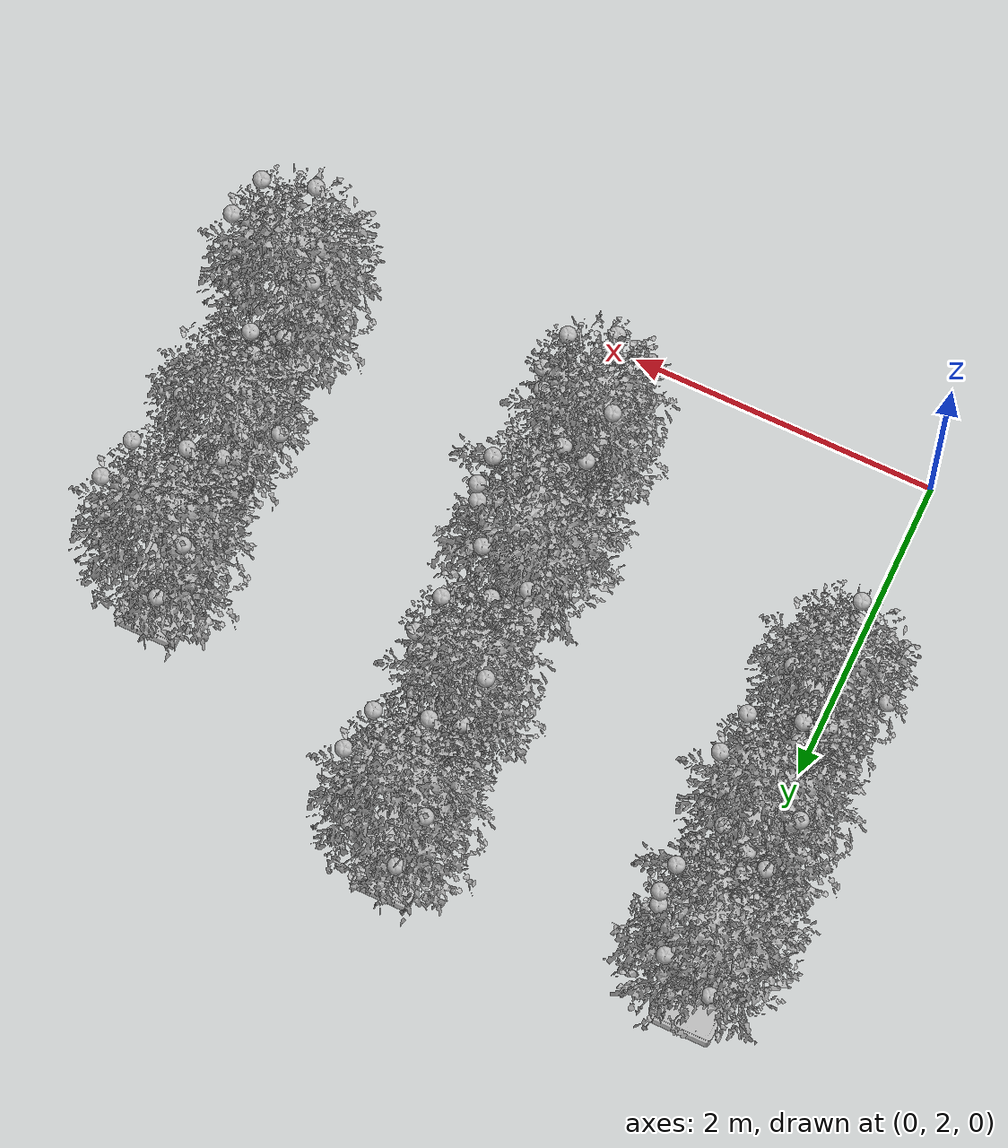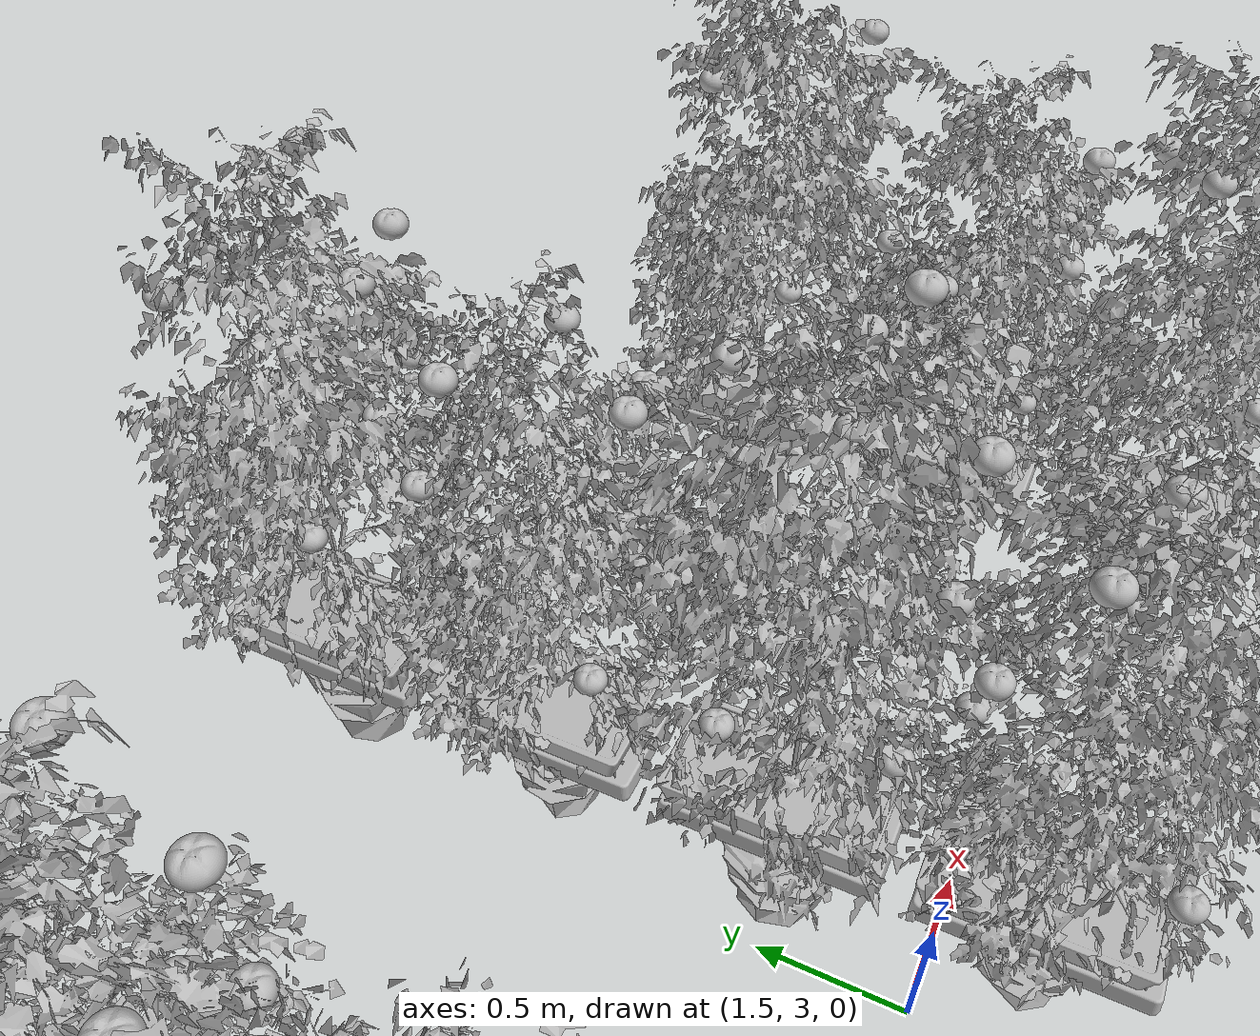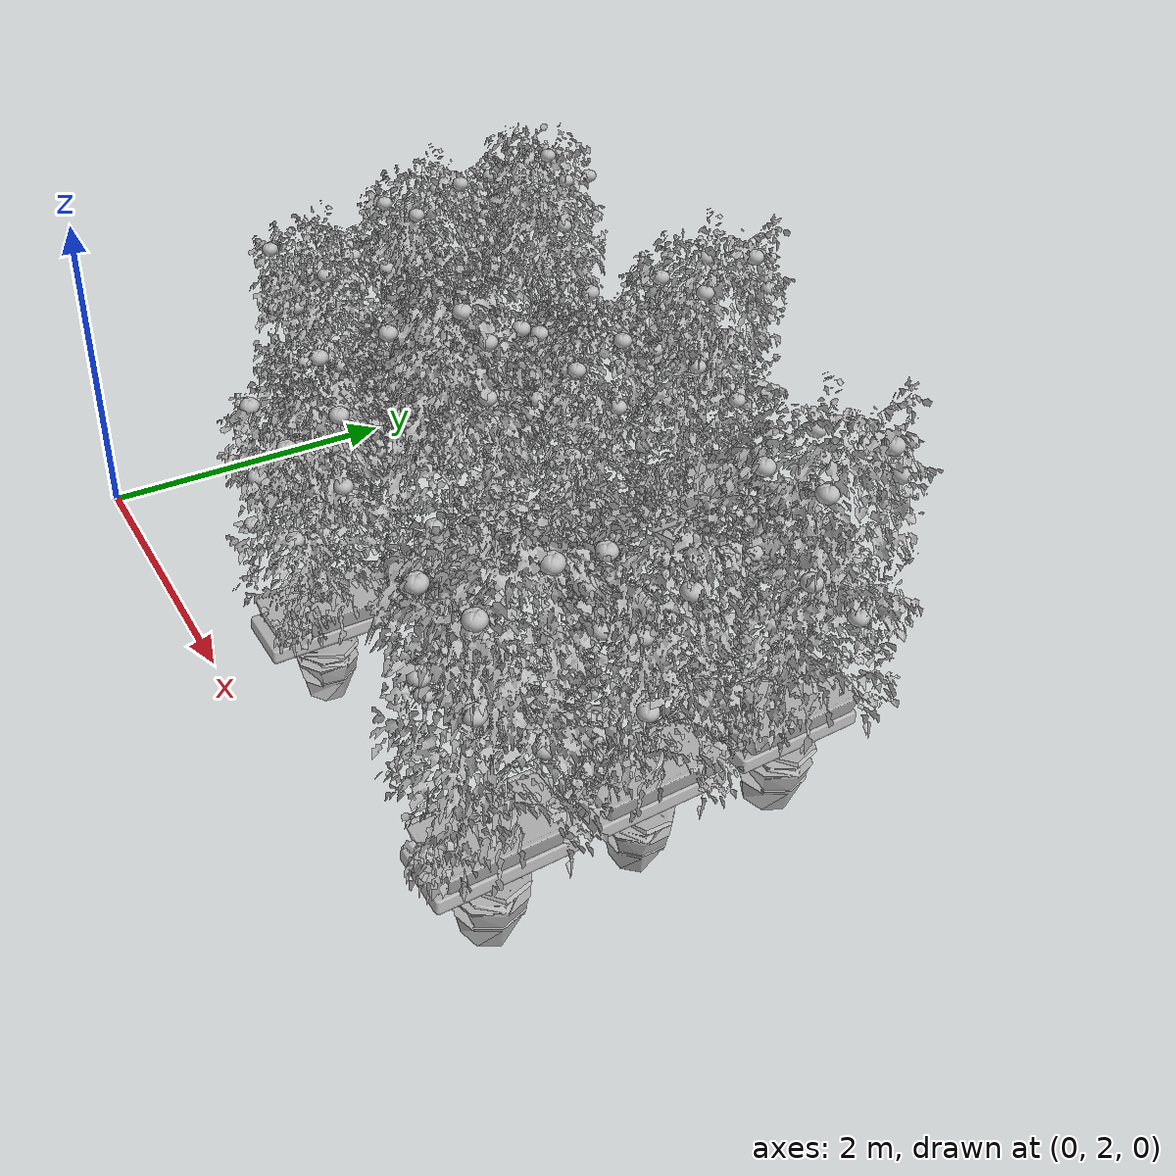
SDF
<sdf version="1.6">
 <world name="default">
  <model name="plant04">
   <static>1</static>
   <link name="plant_4::plant">
    <visual name="visual"><geometry><mesh><uri>model://plant/meshes/plant.obj</uri></mesh></geometry></visual>
    <collision name="collision"><geometry><box><size>0.1 0.1 0.1</size></box></geometry></collision>
    <pose>0 0 -0.45 0 0 -0.277507</pose>
   </link>
   <link name="trough::trough_link">
    <visual name="visual"><geometry><mesh><uri>model://trough/meshes/truf.obj</uri></mesh></geometry></visual>
    <collision name="collision">
     <geometry><mesh><uri>model://trough/meshes/truf.obj</uri></mesh></geometry>
    </collision>
    <pose>0 0 0 1.57 -0 0</pose>
   </link>
   <link name="tomato_40::tomato_link">
    <visual name="visual"><geometry><mesh><uri>model://tomato/meshes/tomato.obj</uri></mesh></geometry></visual>
    <collision name="collision">
     <geometry><mesh><uri>model://tomato/meshes/tomato.obj</uri></mesh></geometry>
    </collision>
    <pose>-0.297 0.244 0.669 0 -0 0</pose>
   </link>
   <link name="tomato_41::tomato_link">
    <visual name="visual"><geometry><mesh><uri>model://tomato/meshes/tomato.obj</uri></mesh></geometry></visual>
    <collision name="collision">
     <geometry><mesh><uri>model://tomato/meshes/tomato.obj</uri></mesh></geometry>
    </collision>
    <pose>0.073 0.375 1.175 0 -0 0</pose>
   </link>
   <link name="tomato_42::tomato_link">
    <visual name="visual"><geometry><mesh><uri>model://tomato/meshes/tomato.obj</uri></mesh></geometry></visual>
    <collision name="collision">
     <geometry><mesh><uri>model://tomato/meshes/tomato.obj</uri></mesh></geometry>
    </collision>
    <pose>0.196 -0.202 1.528 0 -0 0</pose>
   </link>
   <link name="tomato_43::tomato_link">
    <visual name="visual"><geometry><mesh><uri>model://tomato/meshes/tomato.obj</uri></mesh></geometry></visual>
    <collision name="collision">
     <geometry><mesh><uri>model://tomato/meshes/tomato.obj</uri></mesh></geometry>
    </collision>
    <pose>0.054 -0.237 0.732 0 -0 0</pose>
   </link>
   <link name="tomato_44::tomato_link">
    <visual name="visual"><geometry><mesh><uri>model://tomato/meshes/tomato.obj</uri></mesh></geometry></visual>
    <collision name="collision">
     <geometry><mesh><uri>model://tomato/meshes/tomato.obj</uri></mesh></geometry>
    </collision>
    <pose>-0.236 -0.275 0.851 0 -0 0</pose>
   </link>
   <link name="tomato_45::tomato_link">
    <visual name="visual"><geometry><mesh><uri>model://tomato/meshes/tomato.obj</uri></mesh></geometry></visual>
    <collision name="collision">
     <geometry><mesh><uri>model://tomato/meshes/tomato.obj</uri></mesh></geometry>
    </collision>
    <pose>-0.318 0.01 1.158 0 -0 0</pose>
   </link>
   <link name="tomato_46::tomato_link">
    <visual name="visual"><geometry><mesh><uri>model://tomato/meshes/tomato.obj</uri></mesh></geometry></visual>
    <collision name="collision">
     <geometry><mesh><uri>model://tomato/meshes/tomato.obj</uri></mesh></geometry>
    </collision>
    <pose>0.351 0.12 1.158 0 -0 0</pose>
   </link>
   <link name="tomato_47::tomato_link">
    <visual name="visual"><geometry><mesh><uri>model://tomato/meshes/tomato.obj</uri></mesh></geometry></visual>
    <collision name="collision">
     <geometry><mesh><uri>model://tomato/meshes/tomato.obj</uri></mesh></geometry>
    </collision>
    <pose>-0.039 -0.257 1.451 0 -0 0</pose>
   </link>
   <link name="tomato_48::tomato_link">
    <visual name="visual"><geometry><mesh><uri>model://tomato/meshes/tomato.obj</uri></mesh></geometry></visual>
    <collision name="collision">
     <geometry><mesh><uri>model://tomato/meshes/tomato.obj</uri></mesh></geometry>
    </collision>
    <pose>-0.236 -0.189 1.233 0 -0 0</pose>
   </link>
   <link name="tomato_49::tomato_link">
    <visual name="visual"><geometry><mesh><uri>model://tomato/meshes/tomato.obj</uri></mesh></geometry></visual>
    <collision name="collision">
     <geometry><mesh><uri>model://tomato/meshes/tomato.obj</uri></mesh></geometry>
    </collision>
    <pose>-0.318 0.01 1.599 0 -0 0</pose>
   </link>
   <pose>0 3.6 0 0 -0 1.57</pose>
  </model>
  <model name="plant05">
   <static>1</static>
   <link name="plant_1_link">
    <visual name="visual">
     <pose>0 0 -0.45 0 -0 0</pose>
     <geometry>
      <mesh><uri>model://plant/meshes/plant.obj</uri><scale>1.10961 1.10961 1.10961</scale></mesh>
     </geometry>
    </visual>
    <collision name="collision"><geometry><box><size>0.1 0.1 0.1</size></box></geometry></collision>
   </link>
   <link name="trough_1::trough_link">
    <visual name="visual"><geometry><mesh><uri>model://trough/meshes/truf.obj</uri></mesh></geometry></visual>
    <collision name="collision">
     <geometry><mesh><uri>model://trough/meshes/truf.obj</uri></mesh></geometry>
    </collision>
    <pose>0 0 0 1.57 -0 0</pose>
   </link>
   <link name="tomato_10::tomato_link">
    <visual name="visual"><geometry><mesh><uri>model://tomato/meshes/tomato.obj</uri></mesh></geometry></visual>
    <collision name="collision">
     <geometry><mesh><uri>model://tomato/meshes/tomato.obj</uri></mesh></geometry>
    </collision>
    <pose>-0.201 0.268 0.917 0 -0 0</pose>
   </link>
   <link name="tomato_11::tomato_link">
    <visual name="visual"><geometry><mesh><uri>model://tomato/meshes/tomato.obj</uri></mesh></geometry></visual>
    <collision name="collision">
     <geometry><mesh><uri>model://tomato/meshes/tomato.obj</uri></mesh></geometry>
    </collision>
    <pose>0.181 0.231 1.714 0 -0 0</pose>
   </link>
   <link name="tomato_12::tomato_link">
    <visual name="visual"><geometry><mesh><uri>model://tomato/meshes/tomato.obj</uri></mesh></geometry></visual>
    <collision name="collision">
     <geometry><mesh><uri>model://tomato/meshes/tomato.obj</uri></mesh></geometry>
    </collision>
    <pose>0.371 -0.171 1.608 0 -0 0</pose>
   </link>
   <link name="tomato_13::tomato_link">
    <visual name="visual"><geometry><mesh><uri>model://tomato/meshes/tomato.obj</uri></mesh></geometry></visual>
    <collision name="collision">
     <geometry><mesh><uri>model://tomato/meshes/tomato.obj</uri></mesh></geometry>
    </collision>
    <pose>0.059 -0.345 0.978 0 -0 0</pose>
   </link>
   <link name="tomato_14::tomato_link">
    <visual name="visual"><geometry><mesh><uri>model://tomato/meshes/tomato.obj</uri></mesh></geometry></visual>
    <collision name="collision">
     <geometry><mesh><uri>model://tomato/meshes/tomato.obj</uri></mesh></geometry>
    </collision>
    <pose>-0.263 -0.309 1.283 0 -0 0</pose>
   </link>
   <link name="tomato_15::tomato_link">
    <visual name="visual"><geometry><mesh><uri>model://tomato/meshes/tomato.obj</uri></mesh></geometry></visual>
    <collision name="collision">
     <geometry><mesh><uri>model://tomato/meshes/tomato.obj</uri></mesh></geometry>
    </collision>
    <pose>-0.354 0.008 1.283 0 -0 0</pose>
   </link>
   <link name="tomato_16::tomato_link">
    <visual name="visual"><geometry><mesh><uri>model://tomato/meshes/tomato.obj</uri></mesh></geometry></visual>
    <collision name="collision">
     <geometry><mesh><uri>model://tomato/meshes/tomato.obj</uri></mesh></geometry>
    </collision>
    <pose>0.389 0.13 1.096 0 -0 0</pose>
   </link>
   <link name="tomato_17::tomato_link">
    <visual name="visual"><geometry><mesh><uri>model://tomato/meshes/tomato.obj</uri></mesh></geometry></visual>
    <collision name="collision">
     <geometry><mesh><uri>model://tomato/meshes/tomato.obj</uri></mesh></geometry>
    </collision>
    <pose>0.059 -0.345 1.95 0 -0 0</pose>
   </link>
   <link name="tomato_18::tomato_link">
    <visual name="visual"><geometry><mesh><uri>model://tomato/meshes/tomato.obj</uri></mesh></geometry></visual>
    <collision name="collision">
     <geometry><mesh><uri>model://tomato/meshes/tomato.obj</uri></mesh></geometry>
    </collision>
    <pose>-0.263 -0.309 1.773 0 -0 0</pose>
   </link>
   <link name="tomato_19::tomato_link">
    <visual name="visual"><geometry><mesh><uri>model://tomato/meshes/tomato.obj</uri></mesh></geometry></visual>
    <collision name="collision">
     <geometry><mesh><uri>model://tomato/meshes/tomato.obj</uri></mesh></geometry>
    </collision>
    <pose>-0.354 0.008 1.773 0 -0 0</pose>
   </link>
   <pose>0 4.5 0 0 -0 1.57</pose>
  </model>
  <model name="plant06">
   <static>1</static>
   <link name="plant_3_link">
    <visual name="visual">
     <pose>0 0 -0.45 0 0 -1.57</pose>
     <geometry>
      <mesh><uri>model://plant/meshes/plant.obj</uri><scale>1.13768 1.13768 1.13768</scale></mesh>
     </geometry>
    </visual>
   </link>
   <link name="trough::trough_link">
    <visual name="visual"><geometry><mesh><uri>model://trough/meshes/truf.obj</uri></mesh></geometry></visual>
    <collision name="collision">
     <geometry><mesh><uri>model://trough/meshes/truf.obj</uri></mesh></geometry>
    </collision>
    <pose>0 0 0 1.57 -0 0</pose>
   </link>
   <link name="tomato_30::tomato_link">
    <visual name="visual"><geometry><mesh><uri>model://tomato/meshes/tomato.obj</uri></mesh></geometry></visual>
    <collision name="collision">
     <geometry><mesh><uri>model://tomato/meshes/tomato.obj</uri></mesh></geometry>
    </collision>
    <pose>-0.364 0.298 0.921 0 -0 0</pose>
   </link>
   <link name="tomato_31::tomato_link">
    <visual name="visual"><geometry><mesh><uri>model://tomato/meshes/tomato.obj</uri></mesh></geometry></visual>
    <collision name="collision">
     <geometry><mesh><uri>model://tomato/meshes/tomato.obj</uri></mesh></geometry>
    </collision>
    <pose>0.161 0.29 0.769 0 -0 0</pose>
   </link>
   <link name="tomato_32::tomato_link">
    <visual name="visual"><geometry><mesh><uri>model://tomato/meshes/tomato.obj</uri></mesh></geometry></visual>
    <collision name="collision">
     <geometry><mesh><uri>model://tomato/meshes/tomato.obj</uri></mesh></geometry>
    </collision>
    <pose>0.355 -0.152 1.751 0 -0 0</pose>
   </link>
   <link name="tomato_33::tomato_link">
    <visual name="visual"><geometry><mesh><uri>model://tomato/meshes/tomato.obj</uri></mesh></geometry></visual>
    <collision name="collision">
     <geometry><mesh><uri>model://tomato/meshes/tomato.obj</uri></mesh></geometry>
    </collision>
    <pose>0.036 -0.33 1.477 0 -0 0</pose>
   </link>
   <link name="tomato_34::tomato_link">
    <visual name="visual"><geometry><mesh><uri>model://tomato/meshes/tomato.obj</uri></mesh></geometry></visual>
    <collision name="collision">
     <geometry><mesh><uri>model://tomato/meshes/tomato.obj</uri></mesh></geometry>
    </collision>
    <pose>-0.294 -0.293 0.701 0 -0 0</pose>
   </link>
   <link name="tomato_35::tomato_link">
    <visual name="visual"><geometry><mesh><uri>model://tomato/meshes/tomato.obj</uri></mesh></geometry></visual>
    <collision name="collision">
     <geometry><mesh><uri>model://tomato/meshes/tomato.obj</uri></mesh></geometry>
    </collision>
    <pose>-0.388 0.032 1.317 0 -0 0</pose>
   </link>
   <link name="tomato_36::tomato_link">
    <visual name="visual"><geometry><mesh><uri>model://tomato/meshes/tomato.obj</uri></mesh></geometry></visual>
    <collision name="collision">
     <geometry><mesh><uri>model://tomato/meshes/tomato.obj</uri></mesh></geometry>
    </collision>
    <pose>0.374 0.157 1.317 0 -0 0</pose>
   </link>
   <link name="tomato_37::tomato_link">
    <visual name="visual"><geometry><mesh><uri>model://tomato/meshes/tomato.obj</uri></mesh></geometry></visual>
    <collision name="collision">
     <geometry><mesh><uri>model://tomato/meshes/tomato.obj</uri></mesh></geometry>
    </collision>
    <pose>0.036 -0.33 1.82 0 -0 0</pose>
   </link>
   <link name="tomato_38::tomato_link">
    <visual name="visual"><geometry><mesh><uri>model://tomato/meshes/tomato.obj</uri></mesh></geometry></visual>
    <collision name="collision">
     <geometry><mesh><uri>model://tomato/meshes/tomato.obj</uri></mesh></geometry>
    </collision>
    <pose>-0.102 -0.293 2.016 0 -0 0</pose>
   </link>
   <link name="tomato_39::tomato_link">
    <visual name="visual"><geometry><mesh><uri>model://tomato/meshes/tomato.obj</uri></mesh></geometry></visual>
    <collision name="collision">
     <geometry><mesh><uri>model://tomato/meshes/tomato.obj</uri></mesh></geometry>
    </collision>
    <pose>-0.388 0.032 1.82 0 -0 0</pose>
   </link>
   <pose>0 5.4 0 0 -0 1.57</pose>
  </model>
  <model name="plant13">
   <static>1</static>
   <link name="plant_2::plant">
    <visual name="visual"><geometry><mesh><uri>model://plant/meshes/plant.obj</uri></mesh></geometry></visual>
    <collision name="collision"><geometry><box><size>0.1 0.1 0.1</size></box></geometry></collision>
    <pose>0 0 -0.45 0 -0 0.338594</pose>
   </link>
   <link name="trough::trough_link">
    <visual name="visual"><geometry><mesh><uri>model://trough/meshes/truf.obj</uri></mesh></geometry></visual>
    <collision name="collision">
     <geometry><mesh><uri>model://trough/meshes/truf.obj</uri></mesh></geometry>
    </collision>
    <pose>0 0 0 1.57 -0 0</pose>
   </link>
   <link name="tomato_20::tomato_link">
    <visual name="visual"><geometry><mesh><uri>model://tomato/meshes/tomato.obj</uri></mesh></geometry></visual>
    <collision name="collision">
     <geometry><mesh><uri>model://tomato/meshes/tomato.obj</uri></mesh></geometry>
    </collision>
    <pose>-0.297 0.244 0.695 0 -0 0</pose>
   </link>
   <link name="tomato_21::tomato_link">
    <visual name="visual"><geometry><mesh><uri>model://tomato/meshes/tomato.obj</uri></mesh></geometry></visual>
    <collision name="collision">
     <geometry><mesh><uri>model://tomato/meshes/tomato.obj</uri></mesh></geometry>
    </collision>
    <pose>0.164 0.199 1.684 0 -0 0</pose>
   </link>
   <link name="tomato_22::tomato_link">
    <visual name="visual"><geometry><mesh><uri>model://tomato/meshes/tomato.obj</uri></mesh></geometry></visual>
    <collision name="collision">
     <geometry><mesh><uri>model://tomato/meshes/tomato.obj</uri></mesh></geometry>
    </collision>
    <pose>0.394 -0.151 0.705 0 -0 0</pose>
   </link>
   <link name="tomato_23::tomato_link">
    <visual name="visual"><geometry><mesh><uri>model://tomato/meshes/tomato.obj</uri></mesh></geometry></visual>
    <collision name="collision">
     <geometry><mesh><uri>model://tomato/meshes/tomato.obj</uri></mesh></geometry>
    </collision>
    <pose>0.054 -0.308 1.158 0 -0 0</pose>
   </link>
   <link name="tomato_24::tomato_link">
    <visual name="visual"><geometry><mesh><uri>model://tomato/meshes/tomato.obj</uri></mesh></geometry></visual>
    <collision name="collision">
     <geometry><mesh><uri>model://tomato/meshes/tomato.obj</uri></mesh></geometry>
    </collision>
    <pose>-0.236 -0.275 0.883 0 -0 0</pose>
   </link>
   <link name="tomato_25::tomato_link">
    <visual name="visual"><geometry><mesh><uri>model://tomato/meshes/tomato.obj</uri></mesh></geometry></visual>
    <collision name="collision">
     <geometry><mesh><uri>model://tomato/meshes/tomato.obj</uri></mesh></geometry>
    </collision>
    <pose>-0.318 0.01 1.158 0 -0 0</pose>
   </link>
   <link name="tomato_26::tomato_link">
    <visual name="visual"><geometry><mesh><uri>model://tomato/meshes/tomato.obj</uri></mesh></geometry></visual>
    <collision name="collision">
     <geometry><mesh><uri>model://tomato/meshes/tomato.obj</uri></mesh></geometry>
    </collision>
    <pose>0.351 0.12 1.158 0 -0 0</pose>
   </link>
   <link name="tomato_27::tomato_link">
    <visual name="visual"><geometry><mesh><uri>model://tomato/meshes/tomato.obj</uri></mesh></geometry></visual>
    <collision name="collision">
     <geometry><mesh><uri>model://tomato/meshes/tomato.obj</uri></mesh></geometry>
    </collision>
    <pose>0.054 -0.308 1.599 0 -0 0</pose>
   </link>
   <link name="tomato_28::tomato_link">
    <visual name="visual"><geometry><mesh><uri>model://tomato/meshes/tomato.obj</uri></mesh></geometry></visual>
    <collision name="collision">
     <geometry><mesh><uri>model://tomato/meshes/tomato.obj</uri></mesh></geometry>
    </collision>
    <pose>-0.236 -0.275 1.464 0 -0 0</pose>
   </link>
   <link name="tomato_29::tomato_link">
    <visual name="visual"><geometry><mesh><uri>model://tomato/meshes/tomato.obj</uri></mesh></geometry></visual>
    <collision name="collision">
     <geometry><mesh><uri>model://tomato/meshes/tomato.obj</uri></mesh></geometry>
    </collision>
    <pose>-0.318 0.01 1.599 0 -0 0</pose>
   </link>
   <pose>2 2.7 -0 0 -0 1.57</pose>
  </model>
  <model name="plant14">
   <static>1</static>
   <link name="plant_3_link">
    <visual name="visual">
     <pose>0 0 -0.45 0 0 -1.57</pose>
     <geometry>
      <mesh><uri>model://plant/meshes/plant.obj</uri><scale>1.13768 1.13768 1.13768</scale></mesh>
     </geometry>
    </visual>
   </link>
   <link name="trough::trough_link">
    <visual name="visual"><geometry><mesh><uri>model://trough/meshes/truf.obj</uri></mesh></geometry></visual>
    <collision name="collision">
     <geometry><mesh><uri>model://trough/meshes/truf.obj</uri></mesh></geometry>
    </collision>
    <pose>0 0 0 1.57 -0 0</pose>
   </link>
   <link name="tomato_30::tomato_link">
    <visual name="visual"><geometry><mesh><uri>model://tomato/meshes/tomato.obj</uri></mesh></geometry></visual>
    <collision name="collision">
     <geometry><mesh><uri>model://tomato/meshes/tomato.obj</uri></mesh></geometry>
    </collision>
    <pose>-0.364 0.298 0.921 0 -0 0</pose>
   </link>
   <link name="tomato_31::tomato_link">
    <visual name="visual"><geometry><mesh><uri>model://tomato/meshes/tomato.obj</uri></mesh></geometry></visual>
    <collision name="collision">
     <geometry><mesh><uri>model://tomato/meshes/tomato.obj</uri></mesh></geometry>
    </collision>
    <pose>0.161 0.29 0.769 0 -0 0</pose>
   </link>
   <link name="tomato_32::tomato_link">
    <visual name="visual"><geometry><mesh><uri>model://tomato/meshes/tomato.obj</uri></mesh></geometry></visual>
    <collision name="collision">
     <geometry><mesh><uri>model://tomato/meshes/tomato.obj</uri></mesh></geometry>
    </collision>
    <pose>0.355 -0.152 1.751 0 -0 0</pose>
   </link>
   <link name="tomato_33::tomato_link">
    <visual name="visual"><geometry><mesh><uri>model://tomato/meshes/tomato.obj</uri></mesh></geometry></visual>
    <collision name="collision">
     <geometry><mesh><uri>model://tomato/meshes/tomato.obj</uri></mesh></geometry>
    </collision>
    <pose>0.036 -0.33 1.477 0 -0 0</pose>
   </link>
   <link name="tomato_34::tomato_link">
    <visual name="visual"><geometry><mesh><uri>model://tomato/meshes/tomato.obj</uri></mesh></geometry></visual>
    <collision name="collision">
     <geometry><mesh><uri>model://tomato/meshes/tomato.obj</uri></mesh></geometry>
    </collision>
    <pose>-0.294 -0.293 0.701 0 -0 0</pose>
   </link>
   <link name="tomato_35::tomato_link">
    <visual name="visual"><geometry><mesh><uri>model://tomato/meshes/tomato.obj</uri></mesh></geometry></visual>
    <collision name="collision">
     <geometry><mesh><uri>model://tomato/meshes/tomato.obj</uri></mesh></geometry>
    </collision>
    <pose>-0.388 0.032 1.317 0 -0 0</pose>
   </link>
   <link name="tomato_36::tomato_link">
    <visual name="visual"><geometry><mesh><uri>model://tomato/meshes/tomato.obj</uri></mesh></geometry></visual>
    <collision name="collision">
     <geometry><mesh><uri>model://tomato/meshes/tomato.obj</uri></mesh></geometry>
    </collision>
    <pose>0.374 0.157 1.317 0 -0 0</pose>
   </link>
   <link name="tomato_37::tomato_link">
    <visual name="visual"><geometry><mesh><uri>model://tomato/meshes/tomato.obj</uri></mesh></geometry></visual>
    <collision name="collision">
     <geometry><mesh><uri>model://tomato/meshes/tomato.obj</uri></mesh></geometry>
    </collision>
    <pose>0.036 -0.33 1.82 0 -0 0</pose>
   </link>
   <link name="tomato_38::tomato_link">
    <visual name="visual"><geometry><mesh><uri>model://tomato/meshes/tomato.obj</uri></mesh></geometry></visual>
    <collision name="collision">
     <geometry><mesh><uri>model://tomato/meshes/tomato.obj</uri></mesh></geometry>
    </collision>
    <pose>-0.102 -0.293 2.016 0 -0 0</pose>
   </link>
   <link name="tomato_39::tomato_link">
    <visual name="visual"><geometry><mesh><uri>model://tomato/meshes/tomato.obj</uri></mesh></geometry></visual>
    <collision name="collision">
     <geometry><mesh><uri>model://tomato/meshes/tomato.obj</uri></mesh></geometry>
    </collision>
    <pose>-0.388 0.032 1.82 0 -0 0</pose>
   </link>
   <pose>2 3.6 0 0 -0 1.57</pose>
  </model>
  <model name="plant15">
   <static>1</static>
   <link name="plant_2::plant">
    <visual name="visual"><geometry><mesh><uri>model://plant/meshes/plant.obj</uri></mesh></geometry></visual>
    <collision name="collision"><geometry><box><size>0.1 0.1 0.1</size></box></geometry></collision>
    <pose>0 0 -0.45 0 -0 0.338594</pose>
   </link>
   <link name="trough::trough_link">
    <visual name="visual"><geometry><mesh><uri>model://trough/meshes/truf.obj</uri></mesh></geometry></visual>
    <collision name="collision">
     <geometry><mesh><uri>model://trough/meshes/truf.obj</uri></mesh></geometry>
    </collision>
    <pose>0 0 0 1.57 -0 0</pose>
   </link>
   <link name="tomato_20::tomato_link">
    <visual name="visual"><geometry><mesh><uri>model://tomato/meshes/tomato.obj</uri></mesh></geometry></visual>
    <collision name="collision">
     <geometry><mesh><uri>model://tomato/meshes/tomato.obj</uri></mesh></geometry>
    </collision>
    <pose>-0.297 0.244 0.695 0 -0 0</pose>
   </link>
   <link name="tomato_21::tomato_link">
    <visual name="visual"><geometry><mesh><uri>model://tomato/meshes/tomato.obj</uri></mesh></geometry></visual>
    <collision name="collision">
     <geometry><mesh><uri>model://tomato/meshes/tomato.obj</uri></mesh></geometry>
    </collision>
    <pose>0.164 0.199 1.684 0 -0 0</pose>
   </link>
   <link name="tomato_22::tomato_link">
    <visual name="visual"><geometry><mesh><uri>model://tomato/meshes/tomato.obj</uri></mesh></geometry></visual>
    <collision name="collision">
     <geometry><mesh><uri>model://tomato/meshes/tomato.obj</uri></mesh></geometry>
    </collision>
    <pose>0.394 -0.151 0.705 0 -0 0</pose>
   </link>
   <link name="tomato_23::tomato_link">
    <visual name="visual"><geometry><mesh><uri>model://tomato/meshes/tomato.obj</uri></mesh></geometry></visual>
    <collision name="collision">
     <geometry><mesh><uri>model://tomato/meshes/tomato.obj</uri></mesh></geometry>
    </collision>
    <pose>0.054 -0.308 1.158 0 -0 0</pose>
   </link>
   <link name="tomato_24::tomato_link">
    <visual name="visual"><geometry><mesh><uri>model://tomato/meshes/tomato.obj</uri></mesh></geometry></visual>
    <collision name="collision">
     <geometry><mesh><uri>model://tomato/meshes/tomato.obj</uri></mesh></geometry>
    </collision>
    <pose>-0.236 -0.275 0.883 0 -0 0</pose>
   </link>
   <link name="tomato_25::tomato_link">
    <visual name="visual"><geometry><mesh><uri>model://tomato/meshes/tomato.obj</uri></mesh></geometry></visual>
    <collision name="collision">
     <geometry><mesh><uri>model://tomato/meshes/tomato.obj</uri></mesh></geometry>
    </collision>
    <pose>-0.318 0.01 1.158 0 -0 0</pose>
   </link>
   <link name="tomato_26::tomato_link">
    <visual name="visual"><geometry><mesh><uri>model://tomato/meshes/tomato.obj</uri></mesh></geometry></visual>
    <collision name="collision">
     <geometry><mesh><uri>model://tomato/meshes/tomato.obj</uri></mesh></geometry>
    </collision>
    <pose>0.351 0.12 1.158 0 -0 0</pose>
   </link>
   <link name="tomato_27::tomato_link">
    <visual name="visual"><geometry><mesh><uri>model://tomato/meshes/tomato.obj</uri></mesh></geometry></visual>
    <collision name="collision">
     <geometry><mesh><uri>model://tomato/meshes/tomato.obj</uri></mesh></geometry>
    </collision>
    <pose>0.054 -0.308 1.599 0 -0 0</pose>
   </link>
   <link name="tomato_28::tomato_link">
    <visual name="visual"><geometry><mesh><uri>model://tomato/meshes/tomato.obj</uri></mesh></geometry></visual>
    <collision name="collision">
     <geometry><mesh><uri>model://tomato/meshes/tomato.obj</uri></mesh></geometry>
    </collision>
    <pose>-0.236 -0.275 1.464 0 -0 0</pose>
   </link>
   <link name="tomato_29::tomato_link">
    <visual name="visual"><geometry><mesh><uri>model://tomato/meshes/tomato.obj</uri></mesh></geometry></visual>
    <collision name="collision">
     <geometry><mesh><uri>model://tomato/meshes/tomato.obj</uri></mesh></geometry>
    </collision>
    <pose>-0.318 0.01 1.599 0 -0 0</pose>
   </link>
   <pose>2 4.5 -0 0 -0 1.57</pose>
  </model>
  <model name="plant16">
   <static>1</static>
   <link name="plant_1_link">
    <visual name="visual">
     <pose>0 0 -0.45 0 -0 0</pose>
     <geometry>
      <mesh><uri>model://plant/meshes/plant.obj</uri><scale>1.10961 1.10961 1.10961</scale></mesh>
     </geometry>
    </visual>
    <collision name="collision"><geometry><box><size>0.1 0.1 0.1</size></box></geometry></collision>
   </link>
   <link name="trough_1::trough_link">
    <visual name="visual"><geometry><mesh><uri>model://trough/meshes/truf.obj</uri></mesh></geometry></visual>
    <collision name="collision">
     <geometry><mesh><uri>model://trough/meshes/truf.obj</uri></mesh></geometry>
    </collision>
    <pose>0 0 0 1.57 -0 0</pose>
   </link>
   <link name="tomato_10::tomato_link">
    <visual name="visual"><geometry><mesh><uri>model://tomato/meshes/tomato.obj</uri></mesh></geometry></visual>
    <collision name="collision">
     <geometry><mesh><uri>model://tomato/meshes/tomato.obj</uri></mesh></geometry>
    </collision>
    <pose>-0.201 0.268 0.917 0 -0 0</pose>
   </link>
   <link name="tomato_11::tomato_link">
    <visual name="visual"><geometry><mesh><uri>model://tomato/meshes/tomato.obj</uri></mesh></geometry></visual>
    <collision name="collision">
     <geometry><mesh><uri>model://tomato/meshes/tomato.obj</uri></mesh></geometry>
    </collision>
    <pose>0.181 0.231 1.714 0 -0 0</pose>
   </link>
   <link name="tomato_12::tomato_link">
    <visual name="visual"><geometry><mesh><uri>model://tomato/meshes/tomato.obj</uri></mesh></geometry></visual>
    <collision name="collision">
     <geometry><mesh><uri>model://tomato/meshes/tomato.obj</uri></mesh></geometry>
    </collision>
    <pose>0.371 -0.171 1.608 0 -0 0</pose>
   </link>
   <link name="tomato_13::tomato_link">
    <visual name="visual"><geometry><mesh><uri>model://tomato/meshes/tomato.obj</uri></mesh></geometry></visual>
    <collision name="collision">
     <geometry><mesh><uri>model://tomato/meshes/tomato.obj</uri></mesh></geometry>
    </collision>
    <pose>0.059 -0.345 0.978 0 -0 0</pose>
   </link>
   <link name="tomato_14::tomato_link">
    <visual name="visual"><geometry><mesh><uri>model://tomato/meshes/tomato.obj</uri></mesh></geometry></visual>
    <collision name="collision">
     <geometry><mesh><uri>model://tomato/meshes/tomato.obj</uri></mesh></geometry>
    </collision>
    <pose>-0.263 -0.309 1.283 0 -0 0</pose>
   </link>
   <link name="tomato_15::tomato_link">
    <visual name="visual"><geometry><mesh><uri>model://tomato/meshes/tomato.obj</uri></mesh></geometry></visual>
    <collision name="collision">
     <geometry><mesh><uri>model://tomato/meshes/tomato.obj</uri></mesh></geometry>
    </collision>
    <pose>-0.354 0.008 1.283 0 -0 0</pose>
   </link>
   <link name="tomato_16::tomato_link">
    <visual name="visual"><geometry><mesh><uri>model://tomato/meshes/tomato.obj</uri></mesh></geometry></visual>
    <collision name="collision">
     <geometry><mesh><uri>model://tomato/meshes/tomato.obj</uri></mesh></geometry>
    </collision>
    <pose>0.389 0.13 1.096 0 -0 0</pose>
   </link>
   <link name="tomato_17::tomato_link">
    <visual name="visual"><geometry><mesh><uri>model://tomato/meshes/tomato.obj</uri></mesh></geometry></visual>
    <collision name="collision">
     <geometry><mesh><uri>model://tomato/meshes/tomato.obj</uri></mesh></geometry>
    </collision>
    <pose>0.059 -0.345 1.95 0 -0 0</pose>
   </link>
   <link name="tomato_18::tomato_link">
    <visual name="visual"><geometry><mesh><uri>model://tomato/meshes/tomato.obj</uri></mesh></geometry></visual>
    <collision name="collision">
     <geometry><mesh><uri>model://tomato/meshes/tomato.obj</uri></mesh></geometry>
    </collision>
    <pose>-0.263 -0.309 1.773 0 -0 0</pose>
   </link>
   <link name="tomato_19::tomato_link">
    <visual name="visual"><geometry><mesh><uri>model://tomato/meshes/tomato.obj</uri></mesh></geometry></visual>
    <collision name="collision">
     <geometry><mesh><uri>model://tomato/meshes/tomato.obj</uri></mesh></geometry>
    </collision>
    <pose>-0.354 0.008 1.773 0 -0 0</pose>
   </link>
   <pose>2 5.4 0 0 -0 1.57</pose>
  </model>
  <model name="plant23">
   <static>1</static>
   <link name="plant_1_link">
    <visual name="visual">
     <pose>0 0 -0.45 0 -0 0</pose>
     <geometry>
      <mesh><uri>model://plant/meshes/plant.obj</uri><scale>1.10961 1.10961 1.10961</scale></mesh>
     </geometry>
    </visual>
    <collision name="collision"><geometry><box><size>0.1 0.1 0.1</size></box></geometry></collision>
   </link>
   <link name="trough_1::trough_link">
    <visual name="visual"><geometry><mesh><uri>model://trough/meshes/truf.obj</uri></mesh></geometry></visual>
    <collision name="collision">
     <geometry><mesh><uri>model://trough/meshes/truf.obj</uri></mesh></geometry>
    </collision>
    <pose>0 0 0 1.57 -0 0</pose>
   </link>
   <link name="tomato_10::tomato_link">
    <visual name="visual"><geometry><mesh><uri>model://tomato/meshes/tomato.obj</uri></mesh></geometry></visual>
    <collision name="collision">
     <geometry><mesh><uri>model://tomato/meshes/tomato.obj</uri></mesh></geometry>
    </collision>
    <pose>-0.201 0.268 0.917 0 -0 0</pose>
   </link>
   <link name="tomato_11::tomato_link">
    <visual name="visual"><geometry><mesh><uri>model://tomato/meshes/tomato.obj</uri></mesh></geometry></visual>
    <collision name="collision">
     <geometry><mesh><uri>model://tomato/meshes/tomato.obj</uri></mesh></geometry>
    </collision>
    <pose>0.181 0.231 1.714 0 -0 0</pose>
   </link>
   <link name="tomato_12::tomato_link">
    <visual name="visual"><geometry><mesh><uri>model://tomato/meshes/tomato.obj</uri></mesh></geometry></visual>
    <collision name="collision">
     <geometry><mesh><uri>model://tomato/meshes/tomato.obj</uri></mesh></geometry>
    </collision>
    <pose>0.371 -0.171 1.608 0 -0 0</pose>
   </link>
   <link name="tomato_13::tomato_link">
    <visual name="visual"><geometry><mesh><uri>model://tomato/meshes/tomato.obj</uri></mesh></geometry></visual>
    <collision name="collision">
     <geometry><mesh><uri>model://tomato/meshes/tomato.obj</uri></mesh></geometry>
    </collision>
    <pose>0.059 -0.345 0.978 0 -0 0</pose>
   </link>
   <link name="tomato_14::tomato_link">
    <visual name="visual"><geometry><mesh><uri>model://tomato/meshes/tomato.obj</uri></mesh></geometry></visual>
    <collision name="collision">
     <geometry><mesh><uri>model://tomato/meshes/tomato.obj</uri></mesh></geometry>
    </collision>
    <pose>-0.263 -0.309 1.283 0 -0 0</pose>
   </link>
   <link name="tomato_15::tomato_link">
    <visual name="visual"><geometry><mesh><uri>model://tomato/meshes/tomato.obj</uri></mesh></geometry></visual>
    <collision name="collision">
     <geometry><mesh><uri>model://tomato/meshes/tomato.obj</uri></mesh></geometry>
    </collision>
    <pose>-0.354 0.008 1.283 0 -0 0</pose>
   </link>
   <link name="tomato_16::tomato_link">
    <visual name="visual"><geometry><mesh><uri>model://tomato/meshes/tomato.obj</uri></mesh></geometry></visual>
    <collision name="collision">
     <geometry><mesh><uri>model://tomato/meshes/tomato.obj</uri></mesh></geometry>
    </collision>
    <pose>0.389 0.13 1.096 0 -0 0</pose>
   </link>
   <link name="tomato_17::tomato_link">
    <visual name="visual"><geometry><mesh><uri>model://tomato/meshes/tomato.obj</uri></mesh></geometry></visual>
    <collision name="collision">
     <geometry><mesh><uri>model://tomato/meshes/tomato.obj</uri></mesh></geometry>
    </collision>
    <pose>0.059 -0.345 1.95 0 -0 0</pose>
   </link>
   <link name="tomato_18::tomato_link">
    <visual name="visual"><geometry><mesh><uri>model://tomato/meshes/tomato.obj</uri></mesh></geometry></visual>
    <collision name="collision">
     <geometry><mesh><uri>model://tomato/meshes/tomato.obj</uri></mesh></geometry>
    </collision>
    <pose>-0.263 -0.309 1.773 0 -0 0</pose>
   </link>
   <link name="tomato_19::tomato_link">
    <visual name="visual"><geometry><mesh><uri>model://tomato/meshes/tomato.obj</uri></mesh></geometry></visual>
    <collision name="collision">
     <geometry><mesh><uri>model://tomato/meshes/tomato.obj</uri></mesh></geometry>
    </collision>
    <pose>-0.354 0.008 1.773 0 -0 0</pose>
   </link>
   <pose>4 2.7 0 0 -0 1.57</pose>
  </model>
  <model name="plant24">
   <static>1</static>
   <link name="plant_4::plant">
    <visual name="visual"><geometry><mesh><uri>model://plant/meshes/plant.obj</uri></mesh></geometry></visual>
    <collision name="collision"><geometry><box><size>0.1 0.1 0.1</size></box></geometry></collision>
    <pose>0 0 -0.45 0 0 -0.277507</pose>
   </link>
   <link name="trough::trough_link">
    <visual name="visual"><geometry><mesh><uri>model://trough/meshes/truf.obj</uri></mesh></geometry></visual>
    <collision name="collision">
     <geometry><mesh><uri>model://trough/meshes/truf.obj</uri></mesh></geometry>
    </collision>
    <pose>0 0 0 1.57 -0 0</pose>
   </link>
   <link name="tomato_40::tomato_link">
    <visual name="visual"><geometry><mesh><uri>model://tomato/meshes/tomato.obj</uri></mesh></geometry></visual>
    <collision name="collision">
     <geometry><mesh><uri>model://tomato/meshes/tomato.obj</uri></mesh></geometry>
    </collision>
    <pose>-0.297 0.244 0.669 0 -0 0</pose>
   </link>
   <link name="tomato_41::tomato_link">
    <visual name="visual"><geometry><mesh><uri>model://tomato/meshes/tomato.obj</uri></mesh></geometry></visual>
    <collision name="collision">
     <geometry><mesh><uri>model://tomato/meshes/tomato.obj</uri></mesh></geometry>
    </collision>
    <pose>0.073 0.375 1.175 0 -0 0</pose>
   </link>
   <link name="tomato_42::tomato_link">
    <visual name="visual"><geometry><mesh><uri>model://tomato/meshes/tomato.obj</uri></mesh></geometry></visual>
    <collision name="collision">
     <geometry><mesh><uri>model://tomato/meshes/tomato.obj</uri></mesh></geometry>
    </collision>
    <pose>0.196 -0.202 1.528 0 -0 0</pose>
   </link>
   <link name="tomato_43::tomato_link">
    <visual name="visual"><geometry><mesh><uri>model://tomato/meshes/tomato.obj</uri></mesh></geometry></visual>
    <collision name="collision">
     <geometry><mesh><uri>model://tomato/meshes/tomato.obj</uri></mesh></geometry>
    </collision>
    <pose>0.054 -0.237 0.732 0 -0 0</pose>
   </link>
   <link name="tomato_44::tomato_link">
    <visual name="visual"><geometry><mesh><uri>model://tomato/meshes/tomato.obj</uri></mesh></geometry></visual>
    <collision name="collision">
     <geometry><mesh><uri>model://tomato/meshes/tomato.obj</uri></mesh></geometry>
    </collision>
    <pose>-0.236 -0.275 0.851 0 -0 0</pose>
   </link>
   <link name="tomato_45::tomato_link">
    <visual name="visual"><geometry><mesh><uri>model://tomato/meshes/tomato.obj</uri></mesh></geometry></visual>
    <collision name="collision">
     <geometry><mesh><uri>model://tomato/meshes/tomato.obj</uri></mesh></geometry>
    </collision>
    <pose>-0.318 0.01 1.158 0 -0 0</pose>
   </link>
   <link name="tomato_46::tomato_link">
    <visual name="visual"><geometry><mesh><uri>model://tomato/meshes/tomato.obj</uri></mesh></geometry></visual>
    <collision name="collision">
     <geometry><mesh><uri>model://tomato/meshes/tomato.obj</uri></mesh></geometry>
    </collision>
    <pose>0.351 0.12 1.158 0 -0 0</pose>
   </link>
   <link name="tomato_47::tomato_link">
    <visual name="visual"><geometry><mesh><uri>model://tomato/meshes/tomato.obj</uri></mesh></geometry></visual>
    <collision name="collision">
     <geometry><mesh><uri>model://tomato/meshes/tomato.obj</uri></mesh></geometry>
    </collision>
    <pose>-0.039 -0.257 1.451 0 -0 0</pose>
   </link>
   <link name="tomato_48::tomato_link">
    <visual name="visual"><geometry><mesh><uri>model://tomato/meshes/tomato.obj</uri></mesh></geometry></visual>
    <collision name="collision">
     <geometry><mesh><uri>model://tomato/meshes/tomato.obj</uri></mesh></geometry>
    </collision>
    <pose>-0.236 -0.189 1.233 0 -0 0</pose>
   </link>
   <link name="tomato_49::tomato_link">
    <visual name="visual"><geometry><mesh><uri>model://tomato/meshes/tomato.obj</uri></mesh></geometry></visual>
    <collision name="collision">
     <geometry><mesh><uri>model://tomato/meshes/tomato.obj</uri></mesh></geometry>
    </collision>
    <pose>-0.318 0.01 1.599 0 -0 0</pose>
   </link>
   <pose>4 3.6 0 0 -0 1.57</pose>
  </model>
  <model name="plant25">
   <static>1</static>
   <link name="plant_1_link">
    <visual name="visual">
     <pose>0 0 -0.45 0 -0 0</pose>
     <geometry>
      <mesh><uri>model://plant/meshes/plant.obj</uri><scale>1.10961 1.10961 1.10961</scale></mesh>
     </geometry>
    </visual>
    <collision name="collision"><geometry><box><size>0.1 0.1 0.1</size></box></geometry></collision>
   </link>
   <link name="trough_1::trough_link">
    <visual name="visual"><geometry><mesh><uri>model://trough/meshes/truf.obj</uri></mesh></geometry></visual>
    <collision name="collision">
     <geometry><mesh><uri>model://trough/meshes/truf.obj</uri></mesh></geometry>
    </collision>
    <pose>0 0 0 1.57 -0 0</pose>
   </link>
   <link name="tomato_10::tomato_link">
    <visual name="visual"><geometry><mesh><uri>model://tomato/meshes/tomato.obj</uri></mesh></geometry></visual>
    <collision name="collision">
     <geometry><mesh><uri>model://tomato/meshes/tomato.obj</uri></mesh></geometry>
    </collision>
    <pose>-0.201 0.268 0.917 0 -0 0</pose>
   </link>
   <link name="tomato_11::tomato_link">
    <visual name="visual"><geometry><mesh><uri>model://tomato/meshes/tomato.obj</uri></mesh></geometry></visual>
    <collision name="collision">
     <geometry><mesh><uri>model://tomato/meshes/tomato.obj</uri></mesh></geometry>
    </collision>
    <pose>0.181 0.231 1.714 0 -0 0</pose>
   </link>
   <link name="tomato_12::tomato_link">
    <visual name="visual"><geometry><mesh><uri>model://tomato/meshes/tomato.obj</uri></mesh></geometry></visual>
    <collision name="collision">
     <geometry><mesh><uri>model://tomato/meshes/tomato.obj</uri></mesh></geometry>
    </collision>
    <pose>0.371 -0.171 1.608 0 -0 0</pose>
   </link>
   <link name="tomato_13::tomato_link">
    <visual name="visual"><geometry><mesh><uri>model://tomato/meshes/tomato.obj</uri></mesh></geometry></visual>
    <collision name="collision">
     <geometry><mesh><uri>model://tomato/meshes/tomato.obj</uri></mesh></geometry>
    </collision>
    <pose>0.059 -0.345 0.978 0 -0 0</pose>
   </link>
   <link name="tomato_14::tomato_link">
    <visual name="visual"><geometry><mesh><uri>model://tomato/meshes/tomato.obj</uri></mesh></geometry></visual>
    <collision name="collision">
     <geometry><mesh><uri>model://tomato/meshes/tomato.obj</uri></mesh></geometry>
    </collision>
    <pose>-0.263 -0.309 1.283 0 -0 0</pose>
   </link>
   <link name="tomato_15::tomato_link">
    <visual name="visual"><geometry><mesh><uri>model://tomato/meshes/tomato.obj</uri></mesh></geometry></visual>
    <collision name="collision">
     <geometry><mesh><uri>model://tomato/meshes/tomato.obj</uri></mesh></geometry>
    </collision>
    <pose>-0.354 0.008 1.283 0 -0 0</pose>
   </link>
   <link name="tomato_16::tomato_link">
    <visual name="visual"><geometry><mesh><uri>model://tomato/meshes/tomato.obj</uri></mesh></geometry></visual>
    <collision name="collision">
     <geometry><mesh><uri>model://tomato/meshes/tomato.obj</uri></mesh></geometry>
    </collision>
    <pose>0.389 0.13 1.096 0 -0 0</pose>
   </link>
   <link name="tomato_17::tomato_link">
    <visual name="visual"><geometry><mesh><uri>model://tomato/meshes/tomato.obj</uri></mesh></geometry></visual>
    <collision name="collision">
     <geometry><mesh><uri>model://tomato/meshes/tomato.obj</uri></mesh></geometry>
    </collision>
    <pose>0.059 -0.345 1.95 0 -0 0</pose>
   </link>
   <link name="tomato_18::tomato_link">
    <visual name="visual"><geometry><mesh><uri>model://tomato/meshes/tomato.obj</uri></mesh></geometry></visual>
    <collision name="collision">
     <geometry><mesh><uri>model://tomato/meshes/tomato.obj</uri></mesh></geometry>
    </collision>
    <pose>-0.263 -0.309 1.773 0 -0 0</pose>
   </link>
   <link name="tomato_19::tomato_link">
    <visual name="visual"><geometry><mesh><uri>model://tomato/meshes/tomato.obj</uri></mesh></geometry></visual>
    <collision name="collision">
     <geometry><mesh><uri>model://tomato/meshes/tomato.obj</uri></mesh></geometry>
    </collision>
    <pose>-0.354 0.008 1.773 0 -0 0</pose>
   </link>
   <pose>4 4.5 0 0 -0 1.57</pose>
  </model>
 </world>
</sdf>
